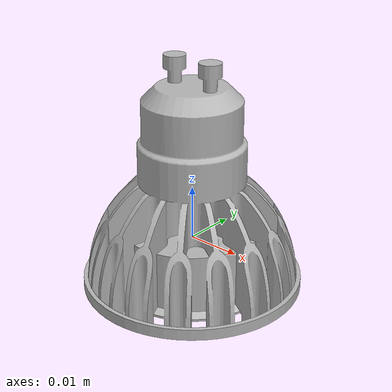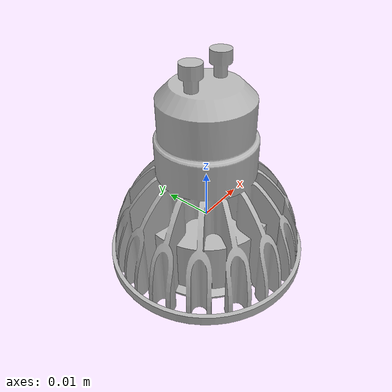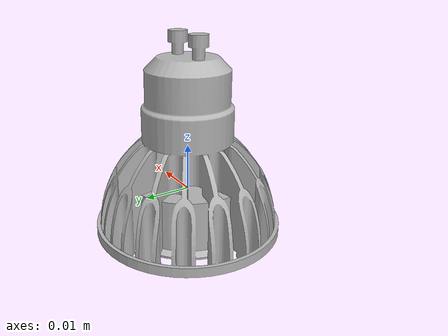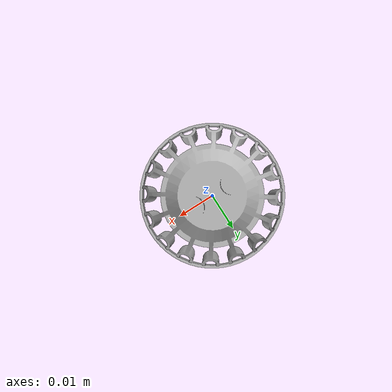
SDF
<?xml version="1.0" ?>
<sdf version="1.6">
  <model name="lamp">
    <static>false</static>
    <link name="link">
      <inertial>
        <mass>0.023</mass>
        <inertia>
          <ixx>0.000009183</ixx>
          <ixy>0.0</ixy>
          <ixz>0.0</ixz>
          <iyy>0.000009183</iyy>
          <iyz>0.0</iyz>
          <izz>0.000007188</izz>
        </inertia>
      </inertial>
      <collision name="collision_low">
        <pose>0 0 0 3.141592645 0 0</pose>
        <geometry>
          <cylinder>
		<radius>.02</radius>
		<length>.019</length>
	  </cylinder>
        </geometry>
	<surface>
         <friction>
           <ode>
             <mu>0.18</mu>
             <mu2>0.18</mu2>
           </ode>
         </friction>
      	</surface>
      </collision>
      <collision name="collision_top">
        <pose>0 0 0.022 3.141592645 0 0</pose>
        <geometry>
          <cylinder>
		<radius>.010</radius>
		<length>.025</length>
	  </cylinder>
        </geometry>
	<surface>
         <friction>
           <ode>
             <mu>0.7</mu>
             <mu2>0.7</mu2>
           </ode>
         </friction>
      	</surface>
      </collision>
      <visual name="visual">
        <pose>0 0 0 3.141592645 0 0</pose>
        <geometry>
          <mesh>
	    <scale>0.8 0.8 0.8</scale>
            <uri>model://lamp/meshes/GU10.obj</uri>
          </mesh>
        </geometry>
      </visual>
    </link>
  </model>
</sdf>
